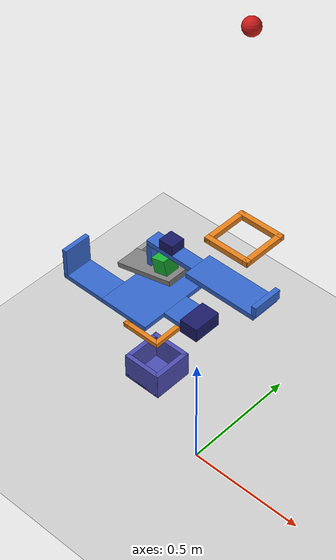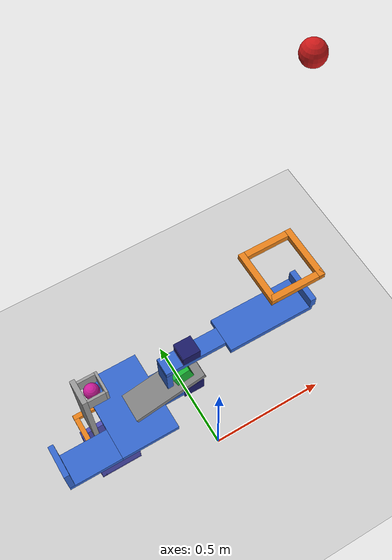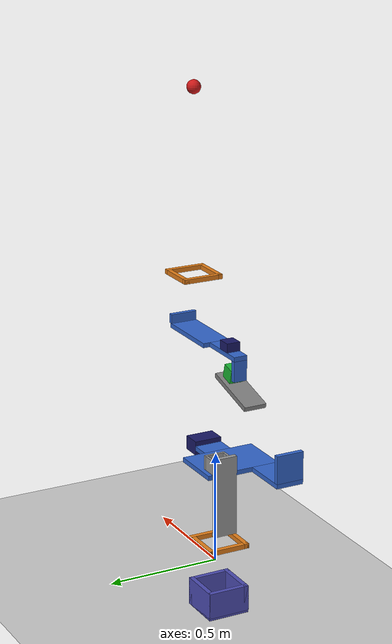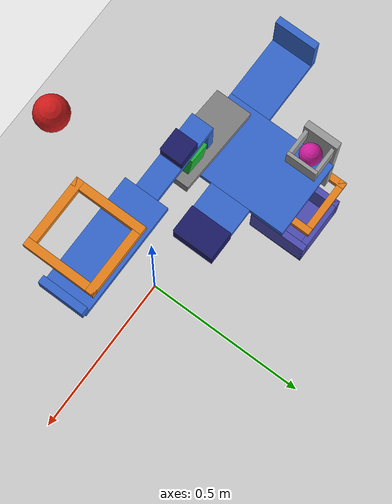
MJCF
<mujoco model="trapdoor_chain">
  <compiler angle="radian"/>
  <option timestep="0.002" gravity="0 0 -9.81"/>
  <worldbody>
    <light name="light0" pos="0 0 4" dir="0 0 -1" directional="true"/>
    <geom name="floor" type="plane" pos="0 0 0" size="3 3 0.1" rgba="0.8 0.8 0.8 1"/>

    <body name="hoop1" pos="0.2 0 1.25">
      <geom name="hoop1_xp" type="box" pos="0.08 0 0" size="0.01 0.09 0.01" rgba="0.9 0.5 0.1 1"/>
      <geom name="hoop1_xn" type="box" pos="-0.08 0 0" size="0.01 0.09 0.01" rgba="0.9 0.5 0.1 1"/>
      <geom name="hoop1_yp" type="box" pos="0 0.08 0" size="0.09 0.01 0.01" rgba="0.9 0.5 0.1 1"/>
      <geom name="hoop1_yn" type="box" pos="0 -0.08 0" size="0.09 0.01 0.01" rgba="0.9 0.5 0.1 1"/>
    </body>

    <body name="ball1" pos="0.2 0 2.05">
      <freejoint name="ball1_free"/>
      <geom name="ball1_geom" type="sphere" size="0.03" mass="0.1" rgba="0.8 0.1 0.1 1"/>
    </body>

    <body name="flap1" pos="0 0 1.0">
      <joint name="flap1_hinge" type="hinge" pos="0 0 0" axis="0 1 0" limited="true" range="0 0.7" damping="0.001"/>
      <geom name="flap1_plate" type="box" pos="0.15 0 0" size="0.15 0.06 0.01" mass="0.1" rgba="0.2 0.4 0.8 1"/>
      <geom name="flap1_lip" type="box" pos="0.30 0 0.03" size="0.01 0.06 0.02" mass="0.01" rgba="0.2 0.4 0.8 1"/>
      <geom name="flap1_arm" type="box" pos="-0.105 0 0" size="0.105 0.03 0.01" mass="0.04" rgba="0.2 0.4 0.8 1"/>
      <geom name="flap1_finger" type="box" pos="-0.20 0 -0.055" size="0.01 0.03 0.045" mass="0.02" friction="0.1 0.005 0.0001" rgba="0.2 0.4 0.8 1"/>
      <geom name="flap1_weight" type="box" pos="-0.12 0 0.03" size="0.03 0.03 0.02" mass="0.19" rgba="0.1 0.1 0.4 1"/>
    </body>

    <body name="ramp" pos="-0.2105 0 0.8622" quat="0.99144 0 -0.13053 0">
      <geom name="ramp_geom" type="box" size="0.13 0.05 0.01" friction="0.02 0.005 0.0001" rgba="0.5 0.5 0.5 1"/>
    </body>

    <body name="block" pos="-0.152 0 0.9194" quat="0.99144 0 -0.13053 0">
      <freejoint name="block_free"/>
      <geom name="block_geom" type="box" size="0.03 0.03 0.03" mass="0.2" friction="0.02 0.005 0.0001" rgba="0.1 0.7 0.2 1"/>
    </body>

    <body name="flap2" pos="-0.20 0 0.60">
      <joint name="flap2_hinge" type="hinge" pos="0 0 0" axis="0 1 0" limited="true" range="-1.5708 0" damping="0.001"/>
      <geom name="flap2_plate" type="box" pos="-0.11 0.10 0" size="0.11 0.16 0.01" mass="0.08" rgba="0.2 0.4 0.8 1"/>
      <geom name="flap2_ext" type="box" pos="-0.32 0 0" size="0.10 0.06 0.01" mass="0.04" rgba="0.2 0.4 0.8 1"/>
      <geom name="flap2_wall" type="box" pos="-0.41 0 0.07" size="0.01 0.06 0.06" mass="0.03" rgba="0.2 0.4 0.8 1"/>
      <geom name="flap2_arm" type="box" pos="0.04 0.10 0" size="0.04 0.06 0.01" mass="0.01" rgba="0.2 0.4 0.8 1"/>
      <geom name="flap2_weight" type="box" pos="0.12 0.10 0" size="0.04 0.06 0.03" mass="0.58" rgba="0.1 0.1 0.4 1"/>
    </body>

    <body name="holder" pos="0 0 0">
      <geom name="holder_backstop" type="box" pos="-0.445 0.20 0.52" size="0.01 0.05 0.17" rgba="0.6 0.6 0.6 1"/>
      <geom name="holder_xp" type="box" pos="-0.36 0.20 0.644" size="0.005 0.045 0.03" rgba="0.6 0.6 0.6 1"/>
      <geom name="holder_yp" type="box" pos="-0.40 0.24 0.644" size="0.035 0.005 0.03" rgba="0.6 0.6 0.6 1"/>
      <geom name="holder_yn" type="box" pos="-0.40 0.16 0.644" size="0.035 0.005 0.03" rgba="0.6 0.6 0.6 1"/>
    </body>

    <body name="ball2" pos="-0.40 0.20 0.64">
      <freejoint name="ball2_free"/>
      <geom name="ball2_geom" type="sphere" size="0.03" mass="0.1" condim="6" friction="0.8 0.01 0.002" rgba="0.8 0.1 0.6 1"/>
    </body>

    <body name="hoop2" pos="-0.40 0.20 0.30">
      <geom name="hoop2_xp" type="box" pos="0.08 0 0" size="0.01 0.09 0.01" rgba="0.9 0.5 0.1 1"/>
      <geom name="hoop2_xn" type="box" pos="-0.08 0 0" size="0.01 0.09 0.01" rgba="0.9 0.5 0.1 1"/>
      <geom name="hoop2_yp" type="box" pos="0 0.08 0" size="0.09 0.01 0.01" rgba="0.9 0.5 0.1 1"/>
      <geom name="hoop2_yn" type="box" pos="0 -0.08 0" size="0.09 0.01 0.01" rgba="0.9 0.5 0.1 1"/>
    </body>

    <body name="cup" pos="-0.40 0.20 0">
      <geom name="cup_bottom" type="box" pos="0 0 0.005" size="0.09 0.09 0.005" condim="6" friction="0.8 0.01 0.002" rgba="0.3 0.3 0.7 1"/>
      <geom name="cup_xp" type="box" pos="0.08 0 0.06" size="0.01 0.09 0.06" rgba="0.3 0.3 0.7 1"/>
      <geom name="cup_xn" type="box" pos="-0.08 0 0.06" size="0.01 0.09 0.06" rgba="0.3 0.3 0.7 1"/>
      <geom name="cup_yp" type="box" pos="0 0.08 0.06" size="0.09 0.01 0.06" rgba="0.3 0.3 0.7 1"/>
      <geom name="cup_yn" type="box" pos="0 -0.08 0.06" size="0.09 0.01 0.06" rgba="0.3 0.3 0.7 1"/>
    </body>
  </worldbody>
</mujoco>
